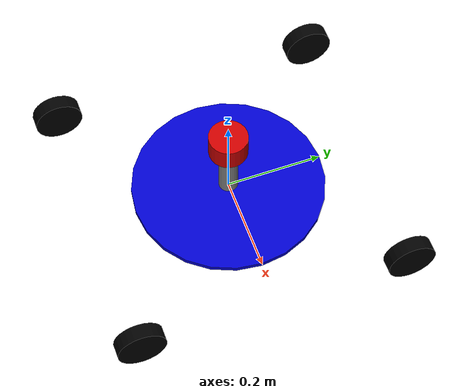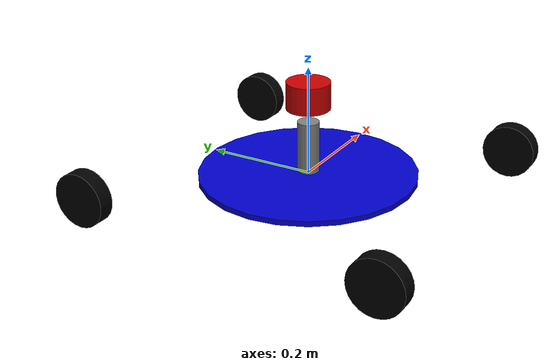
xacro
<?xml version="1.0"?>
<robot xmlns:xacro="http://www.ros.org/wiki/xacro" name="my_robot">

  <!-- 定义一些常用的参数 -->
  <xacro:property name="base_radius" value="0.2" />
  <xacro:property name="wheel_radius" value="0.05" />
  <xacro:property name="wheel_thickness" value="0.03" />
  <xacro:property name="cylinder_height" value="0.1" />
  <xacro:property name="cylinder_radius" value="0.02" />
  <xacro:property name="lidar_height" value="0.05" />
  <xacro:property name="lidar_radius" value="0.04" />

  <!-- 圆形底盘 -->
  <link name="base_link">
    <visual>
      <geometry>
        <cylinder radius="${base_radius}" length="0.01"/>
      </geometry>
      <material name="blue">
        <color rgba="0 0 0.8 1"/>
      </material>
    </visual>
    <collision>
      <geometry>
        <cylinder radius="${base_radius}" length="0.01"/>
      </geometry>
    </collision>
  </link>

  <!-- 轮子宏定义 -->
  <xacro:macro name="wheel" params="name x y">
    <link name="${name}_link">
      <visual>
        <geometry>
          <cylinder radius="${wheel_radius}" length="${wheel_thickness}"/>
        </geometry>
        <origin xyz="${x} ${y} 0" rpy="0 1.57075 0"/>
        <material name="black">
          <color rgba="0 0 0 1"/>
        </material>
      </visual>
      <collision>
        <geometry>
          <cylinder radius="${wheel_radius}" length="${wheel_thickness}"/>
        </geometry>
        <origin xyz="${x} ${y} 0" rpy="0 1.57075 0"/>
      </collision>
    </link>
    <joint name="${name}_joint" type="continuous">
      <parent link="base_link"/>
      <child link="${name}_link"/>
      <axis xyz="0 0 1"/>
      <origin xyz="${x} ${y} 0"/>
    </joint>
  </xacro:macro>

  <!-- 使用轮子宏定义四个轮子 -->
  <xacro:wheel name="front_left" x="-${base_radius * sqrt(2)/2}" y="${base_radius * sqrt(2)/2}" />
  <xacro:wheel name="front_right" x="${base_radius * sqrt(2)/2}" y="${base_radius * sqrt(2)/2}" />
  <xacro:wheel name="rear_left" x="-${base_radius * sqrt(2)/2}" y="-${base_radius * sqrt(2)/2}" />
  <xacro:wheel name="rear_right" x="${base_radius * sqrt(2)/2}" y="-${base_radius * sqrt(2)/2}" />

  <!-- 雷达和支架 -->
  <link name="cylinder_link">
    <visual>
      <geometry>
        <cylinder radius="${cylinder_radius}" length="${cylinder_height}"/>
      </geometry>
      <material name="gray">
        <color rgba="0.5 0.5 0.5 1"/>
      </material>
    </visual>
    <collision>
      <geometry>
        <cylinder radius="${cylinder_radius}" length="${cylinder_height}"/>
      </geometry>
    </collision>
  </link>

  <link name="lidar_link">
    <visual>
      <geometry>
        <cylinder radius="${lidar_radius}" length="${lidar_height}"/>
      </geometry>
      <material name="red">
        <color rgba="0.8 0 0 1"/>
      </material>
    </visual>
    <collision>
      <geometry>
        <cylinder radius="${lidar_radius}" length="${lidar_height}"/>
      </geometry>
    </collision>
  </link>

  <!-- 将支架连接到底盘 -->
  <joint name="cylinder_joint" type="fixed">
    <parent link="base_link"/>
    <child link="cylinder_link"/>
    <origin xyz="0 0 ${cylinder_height/2}"/>
  </joint>

  <!-- 将雷达连接到支架 -->
  <joint name="lidar_joint" type="fixed">
    <parent link="cylinder_link"/>
    <child link="lidar_link"/>
    <origin xyz="0 0 ${cylinder_height/2 + lidar_height}"/>
  </joint>

</robot>
